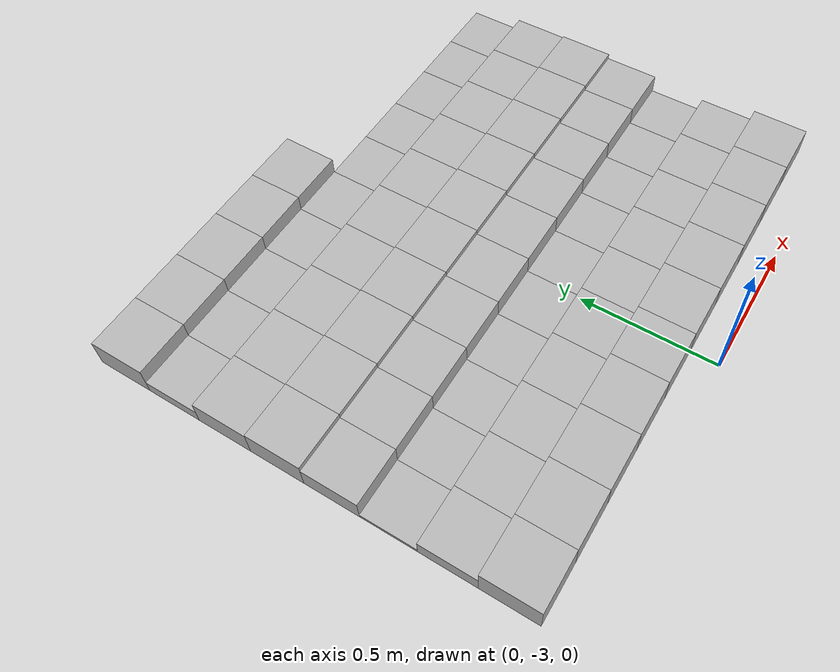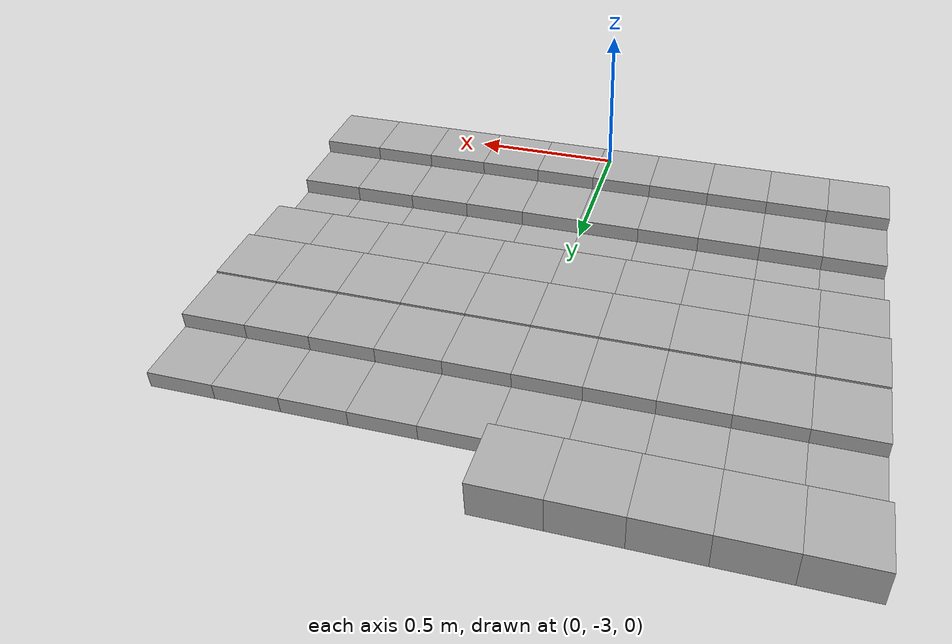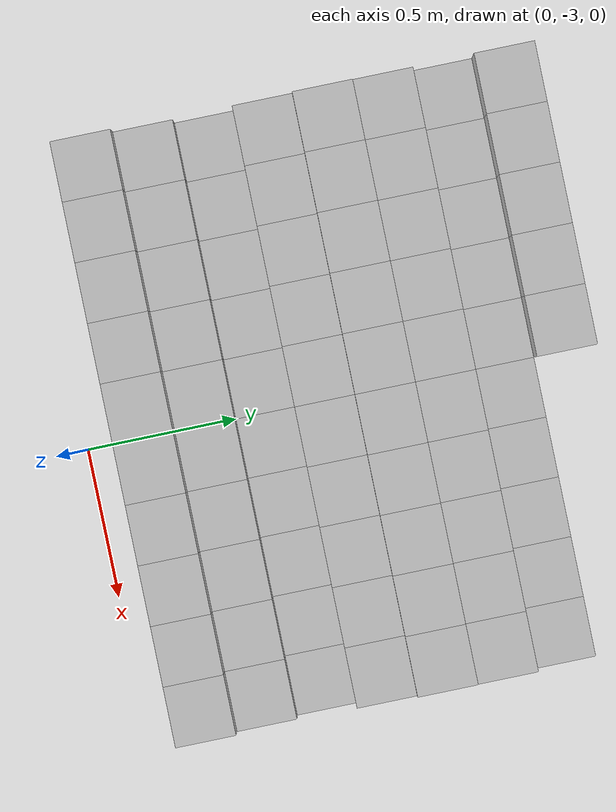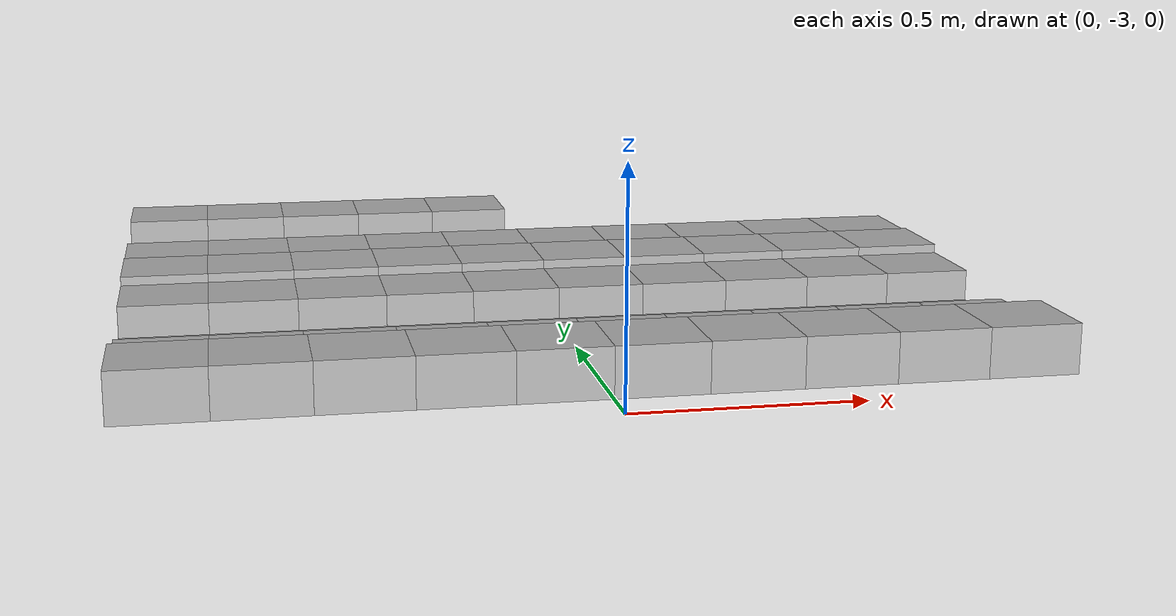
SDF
<sdf version="1.6">
 <model name="Terrain">
  <static>true</static>
  <link name="box_7_0">
   <pose>-0.9 -1.4 0.0577819918738 0 0 0</pose>
   <inertial>
    <mass>1.0</mass>
    <inertia><ixx>0.0</ixx><ixy>0.0</ixy><ixz>0.0</ixz><iyy>0.0</iyy><iyz>0.0</iyz><izz>0.0</izz></inertia>
   </inertial>
   <collision name="collision"><geometry><box><size>0.2 0.2 0.115563983748</size></box></geometry></collision>
   <visual name="visual"><geometry><box><size>0.2 0.2 0.115563983748</size></box></geometry></visual>
  </link>
  <link name="box_7_1">
   <pose>-0.7 -1.4 0.0577819918738 0 0 0</pose>
   <inertial>
    <mass>1.0</mass>
    <inertia><ixx>0.0</ixx><ixy>0.0</ixy><ixz>0.0</ixz><iyy>0.0</iyy><iyz>0.0</iyz><izz>0.0</izz></inertia>
   </inertial>
   <collision name="collision"><geometry><box><size>0.2 0.2 0.115563983748</size></box></geometry></collision>
   <visual name="visual"><geometry><box><size>0.2 0.2 0.115563983748</size></box></geometry></visual>
  </link>
  <link name="box_7_2">
   <pose>-0.5 -1.4 0.0577819918738 0 0 0</pose>
   <inertial>
    <mass>1.0</mass>
    <inertia><ixx>0.0</ixx><ixy>0.0</ixy><ixz>0.0</ixz><iyy>0.0</iyy><iyz>0.0</iyz><izz>0.0</izz></inertia>
   </inertial>
   <collision name="collision"><geometry><box><size>0.2 0.2 0.115563983748</size></box></geometry></collision>
   <visual name="visual"><geometry><box><size>0.2 0.2 0.115563983748</size></box></geometry></visual>
  </link>
  <link name="box_7_3">
   <pose>-0.3 -1.4 0.0577819918738 0 0 0</pose>
   <inertial>
    <mass>1.0</mass>
    <inertia><ixx>0.0</ixx><ixy>0.0</ixy><ixz>0.0</ixz><iyy>0.0</iyy><iyz>0.0</iyz><izz>0.0</izz></inertia>
   </inertial>
   <collision name="collision"><geometry><box><size>0.2 0.2 0.115563983748</size></box></geometry></collision>
   <visual name="visual"><geometry><box><size>0.2 0.2 0.115563983748</size></box></geometry></visual>
  </link>
  <link name="box_7_4">
   <pose>-0.1 -1.4 0.0577819918738 0 0 0</pose>
   <inertial>
    <mass>1.0</mass>
    <inertia><ixx>0.0</ixx><ixy>0.0</ixy><ixz>0.0</ixz><iyy>0.0</iyy><iyz>0.0</iyz><izz>0.0</izz></inertia>
   </inertial>
   <collision name="collision"><geometry><box><size>0.2 0.2 0.115563983748</size></box></geometry></collision>
   <visual name="visual"><geometry><box><size>0.2 0.2 0.115563983748</size></box></geometry></visual>
  </link>
  <link name="box_8_0">
   <pose>-0.9 -1.6 0.0258782885909 0 0 0</pose>
   <inertial>
    <mass>1.0</mass>
    <inertia><ixx>0.0</ixx><ixy>0.0</ixy><ixz>0.0</ixz><iyy>0.0</iyy><iyz>0.0</iyz><izz>0.0</izz></inertia>
   </inertial>
   <collision name="collision"><geometry><box><size>0.2 0.2 0.0517565771819</size></box></geometry></collision>
   <visual name="visual"><geometry><box><size>0.2 0.2 0.0517565771819</size></box></geometry></visual>
  </link>
  <link name="box_8_1">
   <pose>-0.7 -1.6 0.0258782885909 0 0 0</pose>
   <inertial>
    <mass>1.0</mass>
    <inertia><ixx>0.0</ixx><ixy>0.0</ixy><ixz>0.0</ixz><iyy>0.0</iyy><iyz>0.0</iyz><izz>0.0</izz></inertia>
   </inertial>
   <collision name="collision"><geometry><box><size>0.2 0.2 0.0517565771819</size></box></geometry></collision>
   <visual name="visual"><geometry><box><size>0.2 0.2 0.0517565771819</size></box></geometry></visual>
  </link>
  <link name="box_8_2">
   <pose>-0.5 -1.6 0.0258782885909 0 0 0</pose>
   <inertial>
    <mass>1.0</mass>
    <inertia><ixx>0.0</ixx><ixy>0.0</ixy><ixz>0.0</ixz><iyy>0.0</iyy><iyz>0.0</iyz><izz>0.0</izz></inertia>
   </inertial>
   <collision name="collision"><geometry><box><size>0.2 0.2 0.0517565771819</size></box></geometry></collision>
   <visual name="visual"><geometry><box><size>0.2 0.2 0.0517565771819</size></box></geometry></visual>
  </link>
  <link name="box_8_3">
   <pose>-0.3 -1.6 0.0258782885909 0 0 0</pose>
   <inertial>
    <mass>1.0</mass>
    <inertia><ixx>0.0</ixx><ixy>0.0</ixy><ixz>0.0</ixz><iyy>0.0</iyy><iyz>0.0</iyz><izz>0.0</izz></inertia>
   </inertial>
   <collision name="collision"><geometry><box><size>0.2 0.2 0.0517565771819</size></box></geometry></collision>
   <visual name="visual"><geometry><box><size>0.2 0.2 0.0517565771819</size></box></geometry></visual>
  </link>
  <link name="box_8_4">
   <pose>-0.1 -1.6 0.0258782885909 0 0 0</pose>
   <inertial>
    <mass>1.0</mass>
    <inertia><ixx>0.0</ixx><ixy>0.0</ixy><ixz>0.0</ixz><iyy>0.0</iyy><iyz>0.0</iyz><izz>0.0</izz></inertia>
   </inertial>
   <collision name="collision"><geometry><box><size>0.2 0.2 0.0517565771819</size></box></geometry></collision>
   <visual name="visual"><geometry><box><size>0.2 0.2 0.0517565771819</size></box></geometry></visual>
  </link>
  <link name="box_8_5">
   <pose>0.1 -1.6 0.0258782885909 0 0 0</pose>
   <inertial>
    <mass>1.0</mass>
    <inertia><ixx>0.0</ixx><ixy>0.0</ixy><ixz>0.0</ixz><iyy>0.0</iyy><iyz>0.0</iyz><izz>0.0</izz></inertia>
   </inertial>
   <collision name="collision"><geometry><box><size>0.2 0.2 0.0517565771819</size></box></geometry></collision>
   <visual name="visual"><geometry><box><size>0.2 0.2 0.0517565771819</size></box></geometry></visual>
  </link>
  <link name="box_8_6">
   <pose>0.3 -1.6 0.0258782885909 0 0 0</pose>
   <inertial>
    <mass>1.0</mass>
    <inertia><ixx>0.0</ixx><ixy>0.0</ixy><ixz>0.0</ixz><iyy>0.0</iyy><iyz>0.0</iyz><izz>0.0</izz></inertia>
   </inertial>
   <collision name="collision"><geometry><box><size>0.2 0.2 0.0517565771819</size></box></geometry></collision>
   <visual name="visual"><geometry><box><size>0.2 0.2 0.0517565771819</size></box></geometry></visual>
  </link>
  <link name="box_8_7">
   <pose>0.5 -1.6 0.0258782885909 0 0 0</pose>
   <inertial>
    <mass>1.0</mass>
    <inertia><ixx>0.0</ixx><ixy>0.0</ixy><ixz>0.0</ixz><iyy>0.0</iyy><iyz>0.0</iyz><izz>0.0</izz></inertia>
   </inertial>
   <collision name="collision"><geometry><box><size>0.2 0.2 0.0517565771819</size></box></geometry></collision>
   <visual name="visual"><geometry><box><size>0.2 0.2 0.0517565771819</size></box></geometry></visual>
  </link>
  <link name="box_8_8">
   <pose>0.7 -1.6 0.0258782885909 0 0 0</pose>
   <inertial>
    <mass>1.0</mass>
    <inertia><ixx>0.0</ixx><ixy>0.0</ixy><ixz>0.0</ixz><iyy>0.0</iyy><iyz>0.0</iyz><izz>0.0</izz></inertia>
   </inertial>
   <collision name="collision"><geometry><box><size>0.2 0.2 0.0517565771819</size></box></geometry></collision>
   <visual name="visual"><geometry><box><size>0.2 0.2 0.0517565771819</size></box></geometry></visual>
  </link>
  <link name="box_8_9">
   <pose>0.9 -1.6 0.0258782885909 0 0 0</pose>
   <inertial>
    <mass>1.0</mass>
    <inertia><ixx>0.0</ixx><ixy>0.0</ixy><ixz>0.0</ixz><iyy>0.0</iyy><iyz>0.0</iyz><izz>0.0</izz></inertia>
   </inertial>
   <collision name="collision"><geometry><box><size>0.2 0.2 0.0517565771819</size></box></geometry></collision>
   <visual name="visual"><geometry><box><size>0.2 0.2 0.0517565771819</size></box></geometry></visual>
  </link>
  <link name="box_9_0">
   <pose>-0.9 -1.8 0.0505523934481 0 0 0</pose>
   <inertial>
    <mass>1.0</mass>
    <inertia><ixx>0.0</ixx><ixy>0.0</ixy><ixz>0.0</ixz><iyy>0.0</iyy><iyz>0.0</iyz><izz>0.0</izz></inertia>
   </inertial>
   <collision name="collision"><geometry><box><size>0.2 0.2 0.101104786896</size></box></geometry></collision>
   <visual name="visual"><geometry><box><size>0.2 0.2 0.101104786896</size></box></geometry></visual>
  </link>
  <link name="box_9_1">
   <pose>-0.7 -1.8 0.0505523934481 0 0 0</pose>
   <inertial>
    <mass>1.0</mass>
    <inertia><ixx>0.0</ixx><ixy>0.0</ixy><ixz>0.0</ixz><iyy>0.0</iyy><iyz>0.0</iyz><izz>0.0</izz></inertia>
   </inertial>
   <collision name="collision"><geometry><box><size>0.2 0.2 0.101104786896</size></box></geometry></collision>
   <visual name="visual"><geometry><box><size>0.2 0.2 0.101104786896</size></box></geometry></visual>
  </link>
  <link name="box_9_2">
   <pose>-0.5 -1.8 0.0505523934481 0 0 0</pose>
   <inertial>
    <mass>1.0</mass>
    <inertia><ixx>0.0</ixx><ixy>0.0</ixy><ixz>0.0</ixz><iyy>0.0</iyy><iyz>0.0</iyz><izz>0.0</izz></inertia>
   </inertial>
   <collision name="collision"><geometry><box><size>0.2 0.2 0.101104786896</size></box></geometry></collision>
   <visual name="visual"><geometry><box><size>0.2 0.2 0.101104786896</size></box></geometry></visual>
  </link>
  <link name="box_9_3">
   <pose>-0.3 -1.8 0.0505523934481 0 0 0</pose>
   <inertial>
    <mass>1.0</mass>
    <inertia><ixx>0.0</ixx><ixy>0.0</ixy><ixz>0.0</ixz><iyy>0.0</iyy><iyz>0.0</iyz><izz>0.0</izz></inertia>
   </inertial>
   <collision name="collision"><geometry><box><size>0.2 0.2 0.101104786896</size></box></geometry></collision>
   <visual name="visual"><geometry><box><size>0.2 0.2 0.101104786896</size></box></geometry></visual>
  </link>
  <link name="box_9_4">
   <pose>-0.1 -1.8 0.0505523934481 0 0 0</pose>
   <inertial>
    <mass>1.0</mass>
    <inertia><ixx>0.0</ixx><ixy>0.0</ixy><ixz>0.0</ixz><iyy>0.0</iyy><iyz>0.0</iyz><izz>0.0</izz></inertia>
   </inertial>
   <collision name="collision"><geometry><box><size>0.2 0.2 0.101104786896</size></box></geometry></collision>
   <visual name="visual"><geometry><box><size>0.2 0.2 0.101104786896</size></box></geometry></visual>
  </link>
  <link name="box_9_5">
   <pose>0.1 -1.8 0.0505523934481 0 0 0</pose>
   <inertial>
    <mass>1.0</mass>
    <inertia><ixx>0.0</ixx><ixy>0.0</ixy><ixz>0.0</ixz><iyy>0.0</iyy><iyz>0.0</iyz><izz>0.0</izz></inertia>
   </inertial>
   <collision name="collision"><geometry><box><size>0.2 0.2 0.101104786896</size></box></geometry></collision>
   <visual name="visual"><geometry><box><size>0.2 0.2 0.101104786896</size></box></geometry></visual>
  </link>
  <link name="box_9_6">
   <pose>0.3 -1.8 0.0505523934481 0 0 0</pose>
   <inertial>
    <mass>1.0</mass>
    <inertia><ixx>0.0</ixx><ixy>0.0</ixy><ixz>0.0</ixz><iyy>0.0</iyy><iyz>0.0</iyz><izz>0.0</izz></inertia>
   </inertial>
   <collision name="collision"><geometry><box><size>0.2 0.2 0.101104786896</size></box></geometry></collision>
   <visual name="visual"><geometry><box><size>0.2 0.2 0.101104786896</size></box></geometry></visual>
  </link>
  <link name="box_9_7">
   <pose>0.5 -1.8 0.0505523934481 0 0 0</pose>
   <inertial>
    <mass>1.0</mass>
    <inertia><ixx>0.0</ixx><ixy>0.0</ixy><ixz>0.0</ixz><iyy>0.0</iyy><iyz>0.0</iyz><izz>0.0</izz></inertia>
   </inertial>
   <collision name="collision"><geometry><box><size>0.2 0.2 0.101104786896</size></box></geometry></collision>
   <visual name="visual"><geometry><box><size>0.2 0.2 0.101104786896</size></box></geometry></visual>
  </link>
  <link name="box_9_8">
   <pose>0.7 -1.8 0.0505523934481 0 0 0</pose>
   <inertial>
    <mass>1.0</mass>
    <inertia><ixx>0.0</ixx><ixy>0.0</ixy><ixz>0.0</ixz><iyy>0.0</iyy><iyz>0.0</iyz><izz>0.0</izz></inertia>
   </inertial>
   <collision name="collision"><geometry><box><size>0.2 0.2 0.101104786896</size></box></geometry></collision>
   <visual name="visual"><geometry><box><size>0.2 0.2 0.101104786896</size></box></geometry></visual>
  </link>
  <link name="box_9_9">
   <pose>0.9 -1.8 0.0505523934481 0 0 0</pose>
   <inertial>
    <mass>1.0</mass>
    <inertia><ixx>0.0</ixx><ixy>0.0</ixy><ixz>0.0</ixz><iyy>0.0</iyy><iyz>0.0</iyz><izz>0.0</izz></inertia>
   </inertial>
   <collision name="collision"><geometry><box><size>0.2 0.2 0.101104786896</size></box></geometry></collision>
   <visual name="visual"><geometry><box><size>0.2 0.2 0.101104786896</size></box></geometry></visual>
  </link>
  <link name="box_10_0">
   <pose>-0.9 -2.0 0.053593796078 0 0 0</pose>
   <inertial>
    <mass>1.0</mass>
    <inertia><ixx>0.0</ixx><ixy>0.0</ixy><ixz>0.0</ixz><iyy>0.0</iyy><iyz>0.0</iyz><izz>0.0</izz></inertia>
   </inertial>
   <collision name="collision"><geometry><box><size>0.2 0.2 0.107187592156</size></box></geometry></collision>
   <visual name="visual"><geometry><box><size>0.2 0.2 0.107187592156</size></box></geometry></visual>
  </link>
  <link name="box_10_1">
   <pose>-0.7 -2.0 0.053593796078 0 0 0</pose>
   <inertial>
    <mass>1.0</mass>
    <inertia><ixx>0.0</ixx><ixy>0.0</ixy><ixz>0.0</ixz><iyy>0.0</iyy><iyz>0.0</iyz><izz>0.0</izz></inertia>
   </inertial>
   <collision name="collision"><geometry><box><size>0.2 0.2 0.107187592156</size></box></geometry></collision>
   <visual name="visual"><geometry><box><size>0.2 0.2 0.107187592156</size></box></geometry></visual>
  </link>
  <link name="box_10_2">
   <pose>-0.5 -2.0 0.053593796078 0 0 0</pose>
   <inertial>
    <mass>1.0</mass>
    <inertia><ixx>0.0</ixx><ixy>0.0</ixy><ixz>0.0</ixz><iyy>0.0</iyy><iyz>0.0</iyz><izz>0.0</izz></inertia>
   </inertial>
   <collision name="collision"><geometry><box><size>0.2 0.2 0.107187592156</size></box></geometry></collision>
   <visual name="visual"><geometry><box><size>0.2 0.2 0.107187592156</size></box></geometry></visual>
  </link>
  <link name="box_10_3">
   <pose>-0.3 -2.0 0.053593796078 0 0 0</pose>
   <inertial>
    <mass>1.0</mass>
    <inertia><ixx>0.0</ixx><ixy>0.0</ixy><ixz>0.0</ixz><iyy>0.0</iyy><iyz>0.0</iyz><izz>0.0</izz></inertia>
   </inertial>
   <collision name="collision"><geometry><box><size>0.2 0.2 0.107187592156</size></box></geometry></collision>
   <visual name="visual"><geometry><box><size>0.2 0.2 0.107187592156</size></box></geometry></visual>
  </link>
  <link name="box_10_4">
   <pose>-0.1 -2.0 0.053593796078 0 0 0</pose>
   <inertial>
    <mass>1.0</mass>
    <inertia><ixx>0.0</ixx><ixy>0.0</ixy><ixz>0.0</ixz><iyy>0.0</iyy><iyz>0.0</iyz><izz>0.0</izz></inertia>
   </inertial>
   <collision name="collision"><geometry><box><size>0.2 0.2 0.107187592156</size></box></geometry></collision>
   <visual name="visual"><geometry><box><size>0.2 0.2 0.107187592156</size></box></geometry></visual>
  </link>
  <link name="box_10_5">
   <pose>0.1 -2.0 0.053593796078 0 0 0</pose>
   <inertial>
    <mass>1.0</mass>
    <inertia><ixx>0.0</ixx><ixy>0.0</ixy><ixz>0.0</ixz><iyy>0.0</iyy><iyz>0.0</iyz><izz>0.0</izz></inertia>
   </inertial>
   <collision name="collision"><geometry><box><size>0.2 0.2 0.107187592156</size></box></geometry></collision>
   <visual name="visual"><geometry><box><size>0.2 0.2 0.107187592156</size></box></geometry></visual>
  </link>
  <link name="box_10_6">
   <pose>0.3 -2.0 0.053593796078 0 0 0</pose>
   <inertial>
    <mass>1.0</mass>
    <inertia><ixx>0.0</ixx><ixy>0.0</ixy><ixz>0.0</ixz><iyy>0.0</iyy><iyz>0.0</iyz><izz>0.0</izz></inertia>
   </inertial>
   <collision name="collision"><geometry><box><size>0.2 0.2 0.107187592156</size></box></geometry></collision>
   <visual name="visual"><geometry><box><size>0.2 0.2 0.107187592156</size></box></geometry></visual>
  </link>
  <link name="box_10_7">
   <pose>0.5 -2.0 0.053593796078 0 0 0</pose>
   <inertial>
    <mass>1.0</mass>
    <inertia><ixx>0.0</ixx><ixy>0.0</ixy><ixz>0.0</ixz><iyy>0.0</iyy><iyz>0.0</iyz><izz>0.0</izz></inertia>
   </inertial>
   <collision name="collision"><geometry><box><size>0.2 0.2 0.107187592156</size></box></geometry></collision>
   <visual name="visual"><geometry><box><size>0.2 0.2 0.107187592156</size></box></geometry></visual>
  </link>
  <link name="box_10_8">
   <pose>0.7 -2.0 0.053593796078 0 0 0</pose>
   <inertial>
    <mass>1.0</mass>
    <inertia><ixx>0.0</ixx><ixy>0.0</ixy><ixz>0.0</ixz><iyy>0.0</iyy><iyz>0.0</iyz><izz>0.0</izz></inertia>
   </inertial>
   <collision name="collision"><geometry><box><size>0.2 0.2 0.107187592156</size></box></geometry></collision>
   <visual name="visual"><geometry><box><size>0.2 0.2 0.107187592156</size></box></geometry></visual>
  </link>
  <link name="box_10_9">
   <pose>0.9 -2.0 0.053593796078 0 0 0</pose>
   <inertial>
    <mass>1.0</mass>
    <inertia><ixx>0.0</ixx><ixy>0.0</ixy><ixz>0.0</ixz><iyy>0.0</iyy><iyz>0.0</iyz><izz>0.0</izz></inertia>
   </inertial>
   <collision name="collision"><geometry><box><size>0.2 0.2 0.107187592156</size></box></geometry></collision>
   <visual name="visual"><geometry><box><size>0.2 0.2 0.107187592156</size></box></geometry></visual>
  </link>
  <link name="box_11_0">
   <pose>-0.9 -2.2 0.043102777233 0 0 0</pose>
   <inertial>
    <mass>1.0</mass>
    <inertia><ixx>0.0</ixx><ixy>0.0</ixy><ixz>0.0</ixz><iyy>0.0</iyy><iyz>0.0</iyz><izz>0.0</izz></inertia>
   </inertial>
   <collision name="collision"><geometry><box><size>0.2 0.2 0.086205554466</size></box></geometry></collision>
   <visual name="visual"><geometry><box><size>0.2 0.2 0.086205554466</size></box></geometry></visual>
  </link>
  <link name="box_11_1">
   <pose>-0.7 -2.2 0.043102777233 0 0 0</pose>
   <inertial>
    <mass>1.0</mass>
    <inertia><ixx>0.0</ixx><ixy>0.0</ixy><ixz>0.0</ixz><iyy>0.0</iyy><iyz>0.0</iyz><izz>0.0</izz></inertia>
   </inertial>
   <collision name="collision"><geometry><box><size>0.2 0.2 0.086205554466</size></box></geometry></collision>
   <visual name="visual"><geometry><box><size>0.2 0.2 0.086205554466</size></box></geometry></visual>
  </link>
  <link name="box_11_2">
   <pose>-0.5 -2.2 0.043102777233 0 0 0</pose>
   <inertial>
    <mass>1.0</mass>
    <inertia><ixx>0.0</ixx><ixy>0.0</ixy><ixz>0.0</ixz><iyy>0.0</iyy><iyz>0.0</iyz><izz>0.0</izz></inertia>
   </inertial>
   <collision name="collision"><geometry><box><size>0.2 0.2 0.086205554466</size></box></geometry></collision>
   <visual name="visual"><geometry><box><size>0.2 0.2 0.086205554466</size></box></geometry></visual>
  </link>
  <link name="box_11_3">
   <pose>-0.3 -2.2 0.043102777233 0 0 0</pose>
   <inertial>
    <mass>1.0</mass>
    <inertia><ixx>0.0</ixx><ixy>0.0</ixy><ixz>0.0</ixz><iyy>0.0</iyy><iyz>0.0</iyz><izz>0.0</izz></inertia>
   </inertial>
   <collision name="collision"><geometry><box><size>0.2 0.2 0.086205554466</size></box></geometry></collision>
   <visual name="visual"><geometry><box><size>0.2 0.2 0.086205554466</size></box></geometry></visual>
  </link>
  <link name="box_11_4">
   <pose>-0.1 -2.2 0.043102777233 0 0 0</pose>
   <inertial>
    <mass>1.0</mass>
    <inertia><ixx>0.0</ixx><ixy>0.0</ixy><ixz>0.0</ixz><iyy>0.0</iyy><iyz>0.0</iyz><izz>0.0</izz></inertia>
   </inertial>
   <collision name="collision"><geometry><box><size>0.2 0.2 0.086205554466</size></box></geometry></collision>
   <visual name="visual"><geometry><box><size>0.2 0.2 0.086205554466</size></box></geometry></visual>
  </link>
  <link name="box_11_5">
   <pose>0.1 -2.2 0.043102777233 0 0 0</pose>
   <inertial>
    <mass>1.0</mass>
    <inertia><ixx>0.0</ixx><ixy>0.0</ixy><ixz>0.0</ixz><iyy>0.0</iyy><iyz>0.0</iyz><izz>0.0</izz></inertia>
   </inertial>
   <collision name="collision"><geometry><box><size>0.2 0.2 0.086205554466</size></box></geometry></collision>
   <visual name="visual"><geometry><box><size>0.2 0.2 0.086205554466</size></box></geometry></visual>
  </link>
  <link name="box_11_6">
   <pose>0.3 -2.2 0.043102777233 0 0 0</pose>
   <inertial>
    <mass>1.0</mass>
    <inertia><ixx>0.0</ixx><ixy>0.0</ixy><ixz>0.0</ixz><iyy>0.0</iyy><iyz>0.0</iyz><izz>0.0</izz></inertia>
   </inertial>
   <collision name="collision"><geometry><box><size>0.2 0.2 0.086205554466</size></box></geometry></collision>
   <visual name="visual"><geometry><box><size>0.2 0.2 0.086205554466</size></box></geometry></visual>
  </link>
  <link name="box_11_7">
   <pose>0.5 -2.2 0.043102777233 0 0 0</pose>
   <inertial>
    <mass>1.0</mass>
    <inertia><ixx>0.0</ixx><ixy>0.0</ixy><ixz>0.0</ixz><iyy>0.0</iyy><iyz>0.0</iyz><izz>0.0</izz></inertia>
   </inertial>
   <collision name="collision"><geometry><box><size>0.2 0.2 0.086205554466</size></box></geometry></collision>
   <visual name="visual"><geometry><box><size>0.2 0.2 0.086205554466</size></box></geometry></visual>
  </link>
  <link name="box_11_8">
   <pose>0.7 -2.2 0.043102777233 0 0 0</pose>
   <inertial>
    <mass>1.0</mass>
    <inertia><ixx>0.0</ixx><ixy>0.0</ixy><ixz>0.0</ixz><iyy>0.0</iyy><iyz>0.0</iyz><izz>0.0</izz></inertia>
   </inertial>
   <collision name="collision"><geometry><box><size>0.2 0.2 0.086205554466</size></box></geometry></collision>
   <visual name="visual"><geometry><box><size>0.2 0.2 0.086205554466</size></box></geometry></visual>
  </link>
  <link name="box_11_9">
   <pose>0.9 -2.2 0.043102777233 0 0 0</pose>
   <inertial>
    <mass>1.0</mass>
    <inertia><ixx>0.0</ixx><ixy>0.0</ixy><ixz>0.0</ixz><iyy>0.0</iyy><iyz>0.0</iyz><izz>0.0</izz></inertia>
   </inertial>
   <collision name="collision"><geometry><box><size>0.2 0.2 0.086205554466</size></box></geometry></collision>
   <visual name="visual"><geometry><box><size>0.2 0.2 0.086205554466</size></box></geometry></visual>
  </link>
  <link name="box_12_0">
   <pose>-0.9 -2.4 0.00670779464628 0 0 0</pose>
   <inertial>
    <mass>1.0</mass>
    <inertia><ixx>0.0</ixx><ixy>0.0</ixy><ixz>0.0</ixz><iyy>0.0</iyy><iyz>0.0</iyz><izz>0.0</izz></inertia>
   </inertial>
   <collision name="collision"><geometry><box><size>0.2 0.2 0.0134155892926</size></box></geometry></collision>
   <visual name="visual"><geometry><box><size>0.2 0.2 0.0134155892926</size></box></geometry></visual>
  </link>
  <link name="box_12_1">
   <pose>-0.7 -2.4 0.00670779464628 0 0 0</pose>
   <inertial>
    <mass>1.0</mass>
    <inertia><ixx>0.0</ixx><ixy>0.0</ixy><ixz>0.0</ixz><iyy>0.0</iyy><iyz>0.0</iyz><izz>0.0</izz></inertia>
   </inertial>
   <collision name="collision"><geometry><box><size>0.2 0.2 0.0134155892926</size></box></geometry></collision>
   <visual name="visual"><geometry><box><size>0.2 0.2 0.0134155892926</size></box></geometry></visual>
  </link>
  <link name="box_12_2">
   <pose>-0.5 -2.4 0.00670779464628 0 0 0</pose>
   <inertial>
    <mass>1.0</mass>
    <inertia><ixx>0.0</ixx><ixy>0.0</ixy><ixz>0.0</ixz><iyy>0.0</iyy><iyz>0.0</iyz><izz>0.0</izz></inertia>
   </inertial>
   <collision name="collision"><geometry><box><size>0.2 0.2 0.0134155892926</size></box></geometry></collision>
   <visual name="visual"><geometry><box><size>0.2 0.2 0.0134155892926</size></box></geometry></visual>
  </link>
  <link name="box_12_3">
   <pose>-0.3 -2.4 0.00670779464628 0 0 0</pose>
   <inertial>
    <mass>1.0</mass>
    <inertia><ixx>0.0</ixx><ixy>0.0</ixy><ixz>0.0</ixz><iyy>0.0</iyy><iyz>0.0</iyz><izz>0.0</izz></inertia>
   </inertial>
   <collision name="collision"><geometry><box><size>0.2 0.2 0.0134155892926</size></box></geometry></collision>
   <visual name="visual"><geometry><box><size>0.2 0.2 0.0134155892926</size></box></geometry></visual>
  </link>
  <link name="box_12_4">
   <pose>-0.1 -2.4 0.00670779464628 0 0 0</pose>
   <inertial>
    <mass>1.0</mass>
    <inertia><ixx>0.0</ixx><ixy>0.0</ixy><ixz>0.0</ixz><iyy>0.0</iyy><iyz>0.0</iyz><izz>0.0</izz></inertia>
   </inertial>
   <collision name="collision"><geometry><box><size>0.2 0.2 0.0134155892926</size></box></geometry></collision>
   <visual name="visual"><geometry><box><size>0.2 0.2 0.0134155892926</size></box></geometry></visual>
  </link>
  <link name="box_12_5">
   <pose>0.1 -2.4 0.00670779464628 0 0 0</pose>
   <inertial>
    <mass>1.0</mass>
    <inertia><ixx>0.0</ixx><ixy>0.0</ixy><ixz>0.0</ixz><iyy>0.0</iyy><iyz>0.0</iyz><izz>0.0</izz></inertia>
   </inertial>
   <collision name="collision"><geometry><box><size>0.2 0.2 0.0134155892926</size></box></geometry></collision>
   <visual name="visual"><geometry><box><size>0.2 0.2 0.0134155892926</size></box></geometry></visual>
  </link>
  <link name="box_12_6">
   <pose>0.3 -2.4 0.00670779464628 0 0 0</pose>
   <inertial>
    <mass>1.0</mass>
    <inertia><ixx>0.0</ixx><ixy>0.0</ixy><ixz>0.0</ixz><iyy>0.0</iyy><iyz>0.0</iyz><izz>0.0</izz></inertia>
   </inertial>
   <collision name="collision"><geometry><box><size>0.2 0.2 0.0134155892926</size></box></geometry></collision>
   <visual name="visual"><geometry><box><size>0.2 0.2 0.0134155892926</size></box></geometry></visual>
  </link>
  <link name="box_12_7">
   <pose>0.5 -2.4 0.00670779464628 0 0 0</pose>
   <inertial>
    <mass>1.0</mass>
    <inertia><ixx>0.0</ixx><ixy>0.0</ixy><ixz>0.0</ixz><iyy>0.0</iyy><iyz>0.0</iyz><izz>0.0</izz></inertia>
   </inertial>
   <collision name="collision"><geometry><box><size>0.2 0.2 0.0134155892926</size></box></geometry></collision>
   <visual name="visual"><geometry><box><size>0.2 0.2 0.0134155892926</size></box></geometry></visual>
  </link>
  <link name="box_12_8">
   <pose>0.7 -2.4 0.00670779464628 0 0 0</pose>
   <inertial>
    <mass>1.0</mass>
    <inertia><ixx>0.0</ixx><ixy>0.0</ixy><ixz>0.0</ixz><iyy>0.0</iyy><iyz>0.0</iyz><izz>0.0</izz></inertia>
   </inertial>
   <collision name="collision"><geometry><box><size>0.2 0.2 0.0134155892926</size></box></geometry></collision>
   <visual name="visual"><geometry><box><size>0.2 0.2 0.0134155892926</size></box></geometry></visual>
  </link>
  <link name="box_12_9">
   <pose>0.9 -2.4 0.00670779464628 0 0 0</pose>
   <inertial>
    <mass>1.0</mass>
    <inertia><ixx>0.0</ixx><ixy>0.0</ixy><ixz>0.0</ixz><iyy>0.0</iyy><iyz>0.0</iyz><izz>0.0</izz></inertia>
   </inertial>
   <collision name="collision"><geometry><box><size>0.2 0.2 0.0134155892926</size></box></geometry></collision>
   <visual name="visual"><geometry><box><size>0.2 0.2 0.0134155892926</size></box></geometry></visual>
  </link>
  <link name="box_13_0">
   <pose>-0.9 -2.6 0.0325128260864 0 0 0</pose>
   <inertial>
    <mass>1.0</mass>
    <inertia><ixx>0.0</ixx><ixy>0.0</ixy><ixz>0.0</ixz><iyy>0.0</iyy><iyz>0.0</iyz><izz>0.0</izz></inertia>
   </inertial>
   <collision name="collision"><geometry><box><size>0.2 0.2 0.0650256521728</size></box></geometry></collision>
   <visual name="visual"><geometry><box><size>0.2 0.2 0.0650256521728</size></box></geometry></visual>
  </link>
  <link name="box_13_1">
   <pose>-0.7 -2.6 0.0325128260864 0 0 0</pose>
   <inertial>
    <mass>1.0</mass>
    <inertia><ixx>0.0</ixx><ixy>0.0</ixy><ixz>0.0</ixz><iyy>0.0</iyy><iyz>0.0</iyz><izz>0.0</izz></inertia>
   </inertial>
   <collision name="collision"><geometry><box><size>0.2 0.2 0.0650256521728</size></box></geometry></collision>
   <visual name="visual"><geometry><box><size>0.2 0.2 0.0650256521728</size></box></geometry></visual>
  </link>
  <link name="box_13_2">
   <pose>-0.5 -2.6 0.0325128260864 0 0 0</pose>
   <inertial>
    <mass>1.0</mass>
    <inertia><ixx>0.0</ixx><ixy>0.0</ixy><ixz>0.0</ixz><iyy>0.0</iyy><iyz>0.0</iyz><izz>0.0</izz></inertia>
   </inertial>
   <collision name="collision"><geometry><box><size>0.2 0.2 0.0650256521728</size></box></geometry></collision>
   <visual name="visual"><geometry><box><size>0.2 0.2 0.0650256521728</size></box></geometry></visual>
  </link>
  <link name="box_13_3">
   <pose>-0.3 -2.6 0.0325128260864 0 0 0</pose>
   <inertial>
    <mass>1.0</mass>
    <inertia><ixx>0.0</ixx><ixy>0.0</ixy><ixz>0.0</ixz><iyy>0.0</iyy><iyz>0.0</iyz><izz>0.0</izz></inertia>
   </inertial>
   <collision name="collision"><geometry><box><size>0.2 0.2 0.0650256521728</size></box></geometry></collision>
   <visual name="visual"><geometry><box><size>0.2 0.2 0.0650256521728</size></box></geometry></visual>
  </link>
  <link name="box_13_4">
   <pose>-0.1 -2.6 0.0325128260864 0 0 0</pose>
   <inertial>
    <mass>1.0</mass>
    <inertia><ixx>0.0</ixx><ixy>0.0</ixy><ixz>0.0</ixz><iyy>0.0</iyy><iyz>0.0</iyz><izz>0.0</izz></inertia>
   </inertial>
   <collision name="collision"><geometry><box><size>0.2 0.2 0.0650256521728</size></box></geometry></collision>
   <visual name="visual"><geometry><box><size>0.2 0.2 0.0650256521728</size></box></geometry></visual>
  </link>
  <link name="box_13_5">
   <pose>0.1 -2.6 0.0325128260864 0 0 0</pose>
   <inertial>
    <mass>1.0</mass>
    <inertia><ixx>0.0</ixx><ixy>0.0</ixy><ixz>0.0</ixz><iyy>0.0</iyy><iyz>0.0</iyz><izz>0.0</izz></inertia>
   </inertial>
   <collision name="collision"><geometry><box><size>0.2 0.2 0.0650256521728</size></box></geometry></collision>
   <visual name="visual"><geometry><box><size>0.2 0.2 0.0650256521728</size></box></geometry></visual>
  </link>
  <link name="box_13_6">
   <pose>0.3 -2.6 0.0325128260864 0 0 0</pose>
   <inertial>
    <mass>1.0</mass>
    <inertia><ixx>0.0</ixx><ixy>0.0</ixy><ixz>0.0</ixz><iyy>0.0</iyy><iyz>0.0</iyz><izz>0.0</izz></inertia>
   </inertial>
   <collision name="collision"><geometry><box><size>0.2 0.2 0.0650256521728</size></box></geometry></collision>
   <visual name="visual"><geometry><box><size>0.2 0.2 0.0650256521728</size></box></geometry></visual>
  </link>
  <link name="box_13_7">
   <pose>0.5 -2.6 0.0325128260864 0 0 0</pose>
   <inertial>
    <mass>1.0</mass>
    <inertia><ixx>0.0</ixx><ixy>0.0</ixy><ixz>0.0</ixz><iyy>0.0</iyy><iyz>0.0</iyz><izz>0.0</izz></inertia>
   </inertial>
   <collision name="collision"><geometry><box><size>0.2 0.2 0.0650256521728</size></box></geometry></collision>
   <visual name="visual"><geometry><box><size>0.2 0.2 0.0650256521728</size></box></geometry></visual>
  </link>
  <link name="box_13_8">
   <pose>0.7 -2.6 0.0325128260864 0 0 0</pose>
   <inertial>
    <mass>1.0</mass>
    <inertia><ixx>0.0</ixx><ixy>0.0</ixy><ixz>0.0</ixz><iyy>0.0</iyy><iyz>0.0</iyz><izz>0.0</izz></inertia>
   </inertial>
   <collision name="collision"><geometry><box><size>0.2 0.2 0.0650256521728</size></box></geometry></collision>
   <visual name="visual"><geometry><box><size>0.2 0.2 0.0650256521728</size></box></geometry></visual>
  </link>
  <link name="box_13_9">
   <pose>0.9 -2.6 0.0325128260864 0 0 0</pose>
   <inertial>
    <mass>1.0</mass>
    <inertia><ixx>0.0</ixx><ixy>0.0</ixy><ixz>0.0</ixz><iyy>0.0</iyy><iyz>0.0</iyz><izz>0.0</izz></inertia>
   </inertial>
   <collision name="collision"><geometry><box><size>0.2 0.2 0.0650256521728</size></box></geometry></collision>
   <visual name="visual"><geometry><box><size>0.2 0.2 0.0650256521728</size></box></geometry></visual>
  </link>
  <link name="box_14_0">
   <pose>-0.9 -2.8 0.0554509078649 0 0 0</pose>
   <inertial>
    <mass>1.0</mass>
    <inertia><ixx>0.0</ixx><ixy>0.0</ixy><ixz>0.0</ixz><iyy>0.0</iyy><iyz>0.0</iyz><izz>0.0</izz></inertia>
   </inertial>
   <collision name="collision"><geometry><box><size>0.2 0.2 0.11090181573</size></box></geometry></collision>
   <visual name="visual"><geometry><box><size>0.2 0.2 0.11090181573</size></box></geometry></visual>
  </link>
  <link name="box_14_1">
   <pose>-0.7 -2.8 0.0554509078649 0 0 0</pose>
   <inertial>
    <mass>1.0</mass>
    <inertia><ixx>0.0</ixx><ixy>0.0</ixy><ixz>0.0</ixz><iyy>0.0</iyy><iyz>0.0</iyz><izz>0.0</izz></inertia>
   </inertial>
   <collision name="collision"><geometry><box><size>0.2 0.2 0.11090181573</size></box></geometry></collision>
   <visual name="visual"><geometry><box><size>0.2 0.2 0.11090181573</size></box></geometry></visual>
  </link>
  <link name="box_14_2">
   <pose>-0.5 -2.8 0.0554509078649 0 0 0</pose>
   <inertial>
    <mass>1.0</mass>
    <inertia><ixx>0.0</ixx><ixy>0.0</ixy><ixz>0.0</ixz><iyy>0.0</iyy><iyz>0.0</iyz><izz>0.0</izz></inertia>
   </inertial>
   <collision name="collision"><geometry><box><size>0.2 0.2 0.11090181573</size></box></geometry></collision>
   <visual name="visual"><geometry><box><size>0.2 0.2 0.11090181573</size></box></geometry></visual>
  </link>
  <link name="box_14_3">
   <pose>-0.3 -2.8 0.0554509078649 0 0 0</pose>
   <inertial>
    <mass>1.0</mass>
    <inertia><ixx>0.0</ixx><ixy>0.0</ixy><ixz>0.0</ixz><iyy>0.0</iyy><iyz>0.0</iyz><izz>0.0</izz></inertia>
   </inertial>
   <collision name="collision"><geometry><box><size>0.2 0.2 0.11090181573</size></box></geometry></collision>
   <visual name="visual"><geometry><box><size>0.2 0.2 0.11090181573</size></box></geometry></visual>
  </link>
  <link name="box_14_4">
   <pose>-0.1 -2.8 0.0554509078649 0 0 0</pose>
   <inertial>
    <mass>1.0</mass>
    <inertia><ixx>0.0</ixx><ixy>0.0</ixy><ixz>0.0</ixz><iyy>0.0</iyy><iyz>0.0</iyz><izz>0.0</izz></inertia>
   </inertial>
   <collision name="collision"><geometry><box><size>0.2 0.2 0.11090181573</size></box></geometry></collision>
   <visual name="visual"><geometry><box><size>0.2 0.2 0.11090181573</size></box></geometry></visual>
  </link>
  <link name="box_14_5">
   <pose>0.1 -2.8 0.0554509078649 0 0 0</pose>
   <inertial>
    <mass>1.0</mass>
    <inertia><ixx>0.0</ixx><ixy>0.0</ixy><ixz>0.0</ixz><iyy>0.0</iyy><iyz>0.0</iyz><izz>0.0</izz></inertia>
   </inertial>
   <collision name="collision"><geometry><box><size>0.2 0.2 0.11090181573</size></box></geometry></collision>
   <visual name="visual"><geometry><box><size>0.2 0.2 0.11090181573</size></box></geometry></visual>
  </link>
  <link name="box_14_6">
   <pose>0.3 -2.8 0.0554509078649 0 0 0</pose>
   <inertial>
    <mass>1.0</mass>
    <inertia><ixx>0.0</ixx><ixy>0.0</ixy><ixz>0.0</ixz><iyy>0.0</iyy><iyz>0.0</iyz><izz>0.0</izz></inertia>
   </inertial>
   <collision name="collision"><geometry><box><size>0.2 0.2 0.11090181573</size></box></geometry></collision>
   <visual name="visual"><geometry><box><size>0.2 0.2 0.11090181573</size></box></geometry></visual>
  </link>
  <link name="box_14_7">
   <pose>0.5 -2.8 0.0554509078649 0 0 0</pose>
   <inertial>
    <mass>1.0</mass>
    <inertia><ixx>0.0</ixx><ixy>0.0</ixy><ixz>0.0</ixz><iyy>0.0</iyy><iyz>0.0</iyz><izz>0.0</izz></inertia>
   </inertial>
   <collision name="collision"><geometry><box><size>0.2 0.2 0.11090181573</size></box></geometry></collision>
   <visual name="visual"><geometry><box><size>0.2 0.2 0.11090181573</size></box></geometry></visual>
  </link>
  <link name="box_14_8">
   <pose>0.7 -2.8 0.0554509078649 0 0 0</pose>
   <inertial>
    <mass>1.0</mass>
    <inertia><ixx>0.0</ixx><ixy>0.0</ixy><ixz>0.0</ixz><iyy>0.0</iyy><iyz>0.0</iyz><izz>0.0</izz></inertia>
   </inertial>
   <collision name="collision"><geometry><box><size>0.2 0.2 0.11090181573</size></box></geometry></collision>
   <visual name="visual"><geometry><box><size>0.2 0.2 0.11090181573</size></box></geometry></visual>
  </link>
  <link name="box_14_9">
   <pose>0.9 -2.8 0.0554509078649 0 0 0</pose>
   <inertial>
    <mass>1.0</mass>
    <inertia><ixx>0.0</ixx><ixy>0.0</ixy><ixz>0.0</ixz><iyy>0.0</iyy><iyz>0.0</iyz><izz>0.0</izz></inertia>
   </inertial>
   <collision name="collision"><geometry><box><size>0.2 0.2 0.11090181573</size></box></geometry></collision>
   <visual name="visual"><geometry><box><size>0.2 0.2 0.11090181573</size></box></geometry></visual>
  </link>
 </model>
</sdf>
